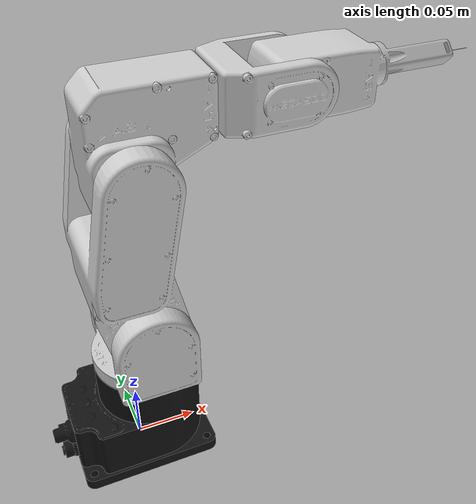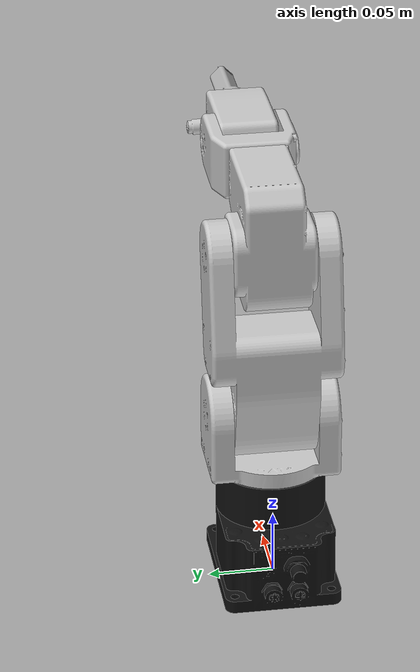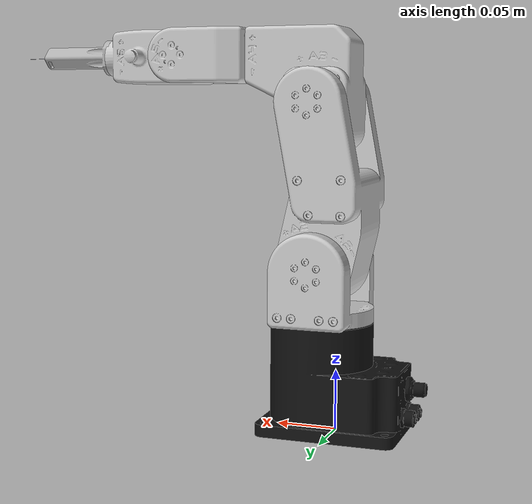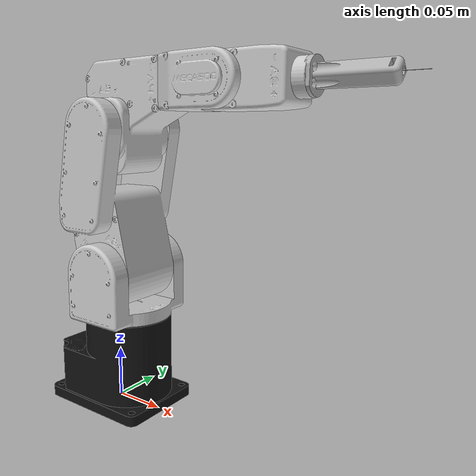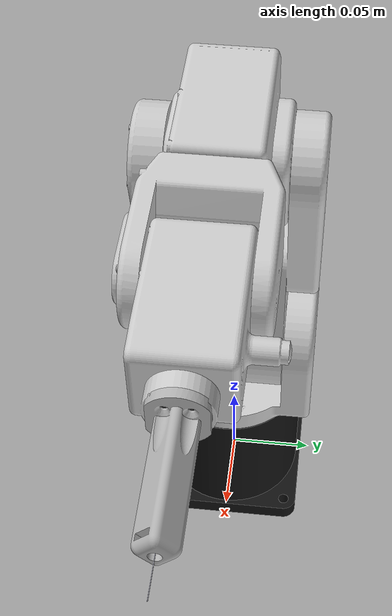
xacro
<?xml version="1.0"?>
<robot name="meca_500_r3" xmlns:xacro="http://www.ros.org/wiki/xacro">

  <xacro:property name="holder_len" value="${0.060}"/>
  <xacro:property name="needle_len" value="${0.020}"/>
  <xacro:property name="needle_rad" value="${0.0002}"/>

  <!-- STL in mm? Then use 0.001.
       If STL is already in meters, use 1 1 1. -->
  <xacro:property name="mesh_scale" value="0.001 0.001 0.001"/>

  <xacro:property name="holder_xyz" value="0 0 0"/>
  <xacro:property name="holder_rpy" value="0 1.57079632679 0"/>

  <!-- Holder mesh path -->
  <xacro:property
      name="holder_visual_mesh"
      value="package://mecademic_description/meshes/holder.stl"/>

  <!-- Optional collision mesh -->
  <xacro:property name="holder_collision_mesh" value=""/>

  <!-- ==========================================
       BASE ROBOT
       ========================================== -->

  <!-- Base link is the center of the robot's bottom plate -->
  <link name="meca_base_link">
    <visual>
      <origin xyz="0 0 0" rpy="0 0 0"/>
      <geometry>
        <mesh filename="package://mecademic_description/meshes/meca_500_r3_base.dae"/>
      </geometry>
    </visual>

    <collision>
      <origin xyz="0 0 0" rpy="0 0 0"/>
      <geometry>
        <mesh filename="package://mecademic_description/meshes/meca_500_r3_base_collision.stl"/>
      </geometry>
    </collision>
  </link>

  <!-- ==========================================
       JOINT 1
       ========================================== -->

  <link name="meca_axis_1_link">
    <visual>
      <origin xyz="0 0 0" rpy="0 0 0"/>
      <geometry>
        <mesh filename="package://mecademic_description/meshes/meca_500_r3_j1.dae"/>
      </geometry>
    </visual>

    <collision>
      <origin xyz="0 0 0" rpy="0 0 0"/>
      <geometry>
        <mesh filename="package://mecademic_description/meshes/meca_500_r3_j1_collision.stl"/>
      </geometry>
    </collision>
  </link>

  <joint name="meca_axis_1_joint" type="revolute">
    <origin xyz="0.012498 0 0.091" rpy="0 0 0"/>
    <parent link="meca_base_link"/>
    <child link="meca_axis_1_link"/>
    <axis xyz="0 0 1"/>

    <limit
        effort="10.0"
        velocity="2.61799"
        lower="-3.05433"
        upper="3.05433"/>
  </joint>

  <!-- ==========================================
       JOINT 2
       ========================================== -->

  <link name="meca_axis_2_link">
    <visual>
      <origin xyz="0 0 0" rpy="0 0 0"/>
      <geometry>
        <mesh filename="package://mecademic_description/meshes/meca_500_r3_j2.dae"/>
      </geometry>
    </visual>

    <collision>
      <origin xyz="0 0 0" rpy="0 0 0"/>
      <geometry>
        <mesh filename="package://mecademic_description/meshes/meca_500_r3_j2_collision.stl"/>
      </geometry>
    </collision>
  </link>

  <joint name="meca_axis_2_joint" type="revolute">
    <origin xyz="0 0 0.044" rpy="0 0 0"/>
    <parent link="meca_axis_1_link"/>
    <child link="meca_axis_2_link"/>
    <axis xyz="0 1 0"/>

    <limit
        effort="10.0"
        velocity="2.61799"
        lower="-1.22173048"
        upper="1.5708"/>
  </joint>

  <!-- ==========================================
       JOINT 3
       ========================================== -->

  <link name="meca_axis_3_link">
    <visual>
      <origin xyz="0 0 0" rpy="0 0 0"/>
      <geometry>
        <mesh filename="package://mecademic_description/meshes/meca_500_r3_j3.dae"/>
      </geometry>
    </visual>

    <collision>
      <origin xyz="0 0 0" rpy="0 0 0"/>
      <geometry>
        <mesh filename="package://mecademic_description/meshes/meca_500_r3_j3_collision.stl"/>
      </geometry>
    </collision>
  </link>

  <joint name="meca_axis_3_joint" type="revolute">
    <origin xyz="0 0 0.135" rpy="0 0 0"/>
    <parent link="meca_axis_2_link"/>
    <child link="meca_axis_3_link"/>
    <axis xyz="0 1 0"/>

    <limit
        effort="10.0"
        velocity="3.14159"
        lower="-2.35619"
        upper="1.22173048"/>
  </joint>

  <!-- ==========================================
       JOINT 4
       ========================================== -->

  <link name="meca_axis_4_link">
    <visual>
      <origin xyz="0 0 0" rpy="0 0 0"/>
      <geometry>
        <mesh filename="package://mecademic_description/meshes/meca_500_r3_j4.dae"/>
      </geometry>
    </visual>

    <collision>
      <origin xyz="0 0 0" rpy="0 0 0"/>
      <geometry>
        <mesh filename="package://mecademic_description/meshes/meca_500_r3_j4_collision.stl"/>
      </geometry>
    </collision>
  </link>

  <joint name="meca_axis_4_joint" type="revolute">
    <origin xyz="0 0 0.038" rpy="0 0 0"/>
    <parent link="meca_axis_3_link"/>
    <child link="meca_axis_4_link"/>
    <axis xyz="1 0 0"/>

    <limit
        effort="10.0"
        velocity="5.23599"
        lower="-2.96706"
        upper="2.96706"/>
  </joint>

  <!-- ==========================================
       JOINT 5
       ========================================== -->

  <link name="meca_axis_5_link">
    <visual>
      <origin xyz="0 0 0" rpy="0 0 0"/>
      <geometry>
        <mesh filename="package://mecademic_description/meshes/meca_500_r3_j5.dae"/>
      </geometry>
    </visual>

    <collision>
      <origin xyz="0 0 0" rpy="0 0 0"/>
      <geometry>
        <mesh filename="package://mecademic_description/meshes/meca_500_r3_j5_collision.stl"/>
      </geometry>
    </collision>
  </link>

  <joint name="meca_axis_5_joint" type="revolute">
    <origin xyz="0.12 0 0" rpy="0 0 0"/>
    <parent link="meca_axis_4_link"/>
    <child link="meca_axis_5_link"/>
    <axis xyz="0 1 0"/>

    <limit
        effort="10.0"
        velocity="5.23599"
        lower="-2.00713"
        upper="2.00713"/>
  </joint>

  <!-- ==========================================
       JOINT 6 / FLANGE
       ========================================== -->

  <link name="meca_axis_6_link">
    <visual>
      <origin xyz="0 0 0" rpy="0 0 0"/>
      <geometry>
        <mesh filename="package://mecademic_description/meshes/meca_500_r3_j6.dae"/>
      </geometry>
    </visual>

    <collision>
      <origin xyz="0 0 0" rpy="0 0 0"/>
      <geometry>
        <mesh filename="package://mecademic_description/meshes/meca_500_r3_j6_collision.stl"/>
      </geometry>
    </collision>
  </link>

  <joint name="meca_axis_6_joint" type="revolute">
    <origin xyz="0.07 0 0" rpy="0 0 0"/>
    <parent link="meca_axis_5_link"/>
    <child link="meca_axis_6_link"/>
    <axis xyz="1 0 0"/>

    <limit
        effort="10.0"
        velocity="8.72665"
        lower="-3.14159"
        upper="3.14159"/>
  </joint>

  <!-- ==========================================
       TOOL REFERENCE FRAME
       ========================================== -->

  <link name="meca_frf_link"/>

  <joint name="meca_frf_fixed" type="fixed">
    <parent link="meca_axis_6_link"/>
    <child link="meca_frf_link"/>
    <origin xyz="0 0 0" rpy="0 0 0"/>
  </joint>

  <!-- ==========================================
       HOLDER
       ========================================== -->

  <!--
       Holder geometry is kept independently from tcp_link.

       Therefore, changing the calibrated TCP does not require
       changing the visual holder dimensions.
  -->

  <link name="holder_link">

    <visual>
      <origin xyz="${holder_xyz}" rpy="${holder_rpy}"/>

      <geometry>
        <mesh
            filename="${holder_visual_mesh}"
            scale="${mesh_scale}"/>
      </geometry>

      <material name="holder_gray">
        <color rgba="0.7 0.7 0.7 1.0"/>
      </material>
    </visual>

    <!-- Collision box extends holder_len along +X -->
    <collision>
      <origin xyz="${holder_len/2.0} 0 0" rpy="0 0 0"/>

      <geometry>
        <box size="${holder_len} 0.02 0.02"/>
      </geometry>
    </collision>

    <inertial>
      <origin xyz="${holder_len/2.0} 0 0" rpy="0 0 0"/>

      <mass value="0.03"/>

      <inertia
          ixx="1e-5"
          ixy="0"
          ixz="0"
          iyy="1e-5"
          iyz="0"
          izz="1e-5"/>
    </inertial>

  </link>

  <joint name="holder_fixed" type="fixed">
    <parent link="meca_frf_link"/>
    <child link="holder_link"/>
    <origin xyz="0 0 0" rpy="0 0 0"/>
  </joint>

  <!-- ==========================================
       NEEDLE
       ========================================== -->

  <link name="tool0_link">

    <visual>
      <origin
          xyz="0 0 ${needle_len/2.0}"
          rpy="0 0 0"/>

      <geometry>
        <cylinder
            length="${needle_len}"
            radius="${needle_rad}"/>
      </geometry>

      <material name="needle_steel">
        <color rgba="0.75 0.75 0.8 1.0"/>
      </material>
    </visual>

    <collision>
      <origin
          xyz="0 0 ${needle_len/2.0}"
          rpy="0 0 0"/>

      <geometry>
        <!-- Slightly enlarged collision radius for safer planning -->
        <cylinder
            length="${needle_len}"
            radius="${needle_rad*1.3}"/>
      </geometry>
    </collision>

    <inertial>
      <origin
          xyz="0 0 ${needle_len/2.0}"
          rpy="0 0 0"/>

      <mass value="0.005"/>

      <inertia
          ixx="1e-7"
          ixy="0"
          ixz="0"
          iyy="1e-7"
          iyz="0"
          izz="1e-7"/>
    </inertial>

  </link>

  <joint name="needle_fixed" type="fixed">
    <parent link="holder_link"/>
    <child link="tool0_link"/>

    <!--
         Needle base:
           holder_len = 60 mm along holder +X

         Rotation:
           Ry(+90°) makes tool0_link local +Z point
           along holder_link +X.
    -->

    <origin
        xyz="${holder_len} 0 0"
        rpy="0 1.57079632679 0"/>
  </joint>

  <!-- ==========================================
       CALIBRATED TCP
       ========================================== -->

  <link name="tcp_link"/>

  <joint name="tcp_fixed" type="fixed">
    <parent link="meca_frf_link"/>
    <child link="tcp_link"/>

    <origin
        xyz="0.108751 -0.000457 0.000053"
        rpy="0 0 0"/>
  </joint>

</robot>
